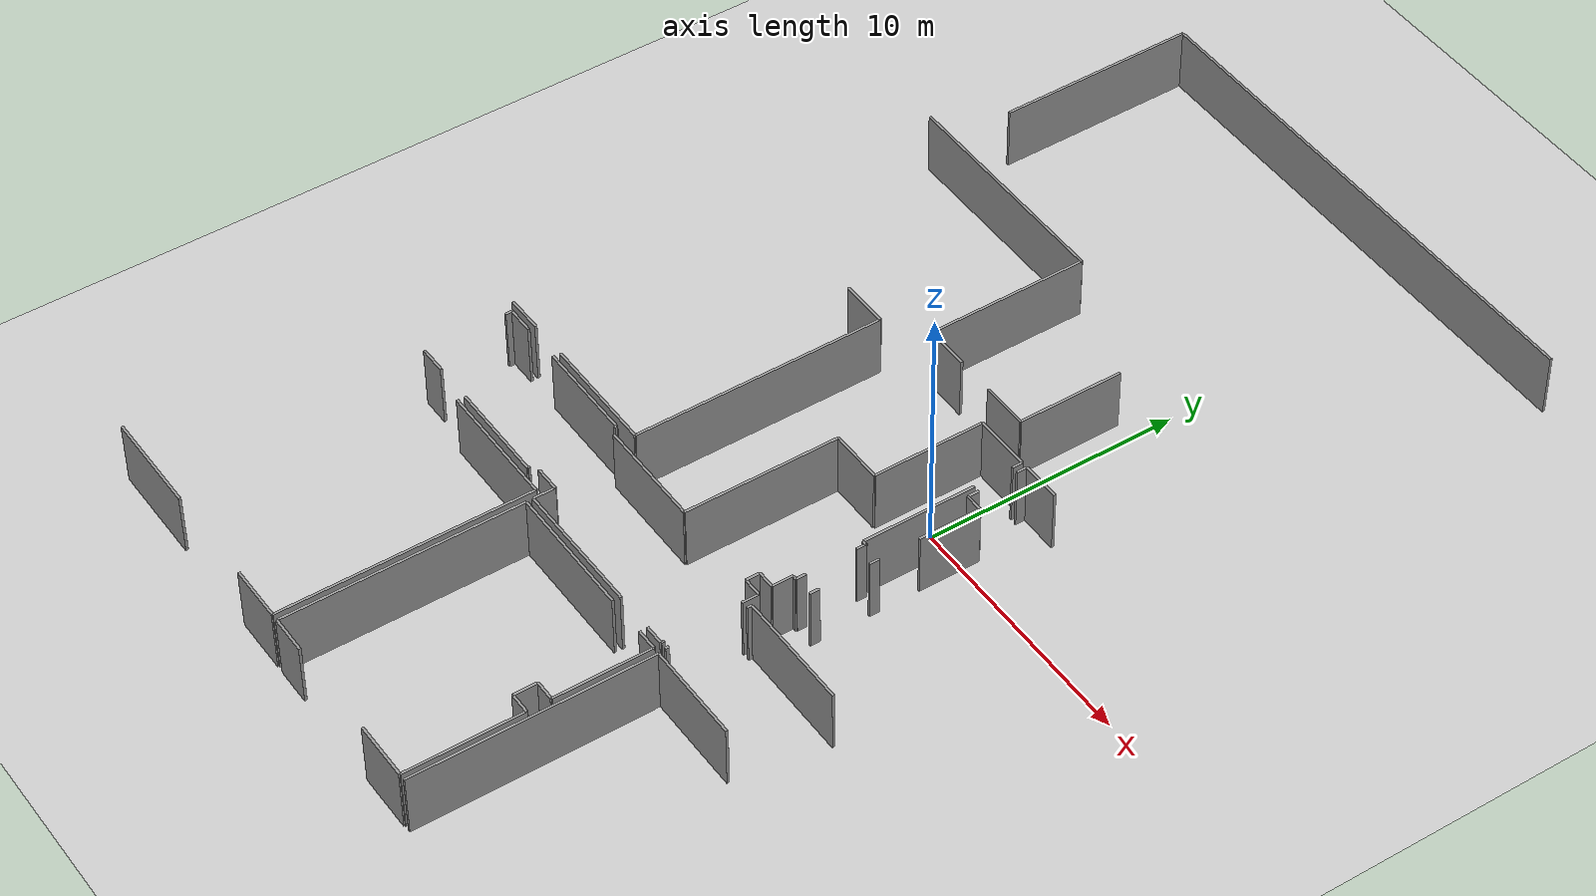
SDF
<sdf version="1.6">
 <world name="default">
  <model name="ground_plane">
   <static>1</static>
   <link name="link">
    <collision name="collision">
     <geometry><plane><normal>0 0 1</normal><size>100 100</size></plane></geometry>
     <surface><friction><ode><mu>100</mu><mu2>50</mu2></ode></friction></surface>
    </collision>
    <visual name="visual">
     <cast_shadows>0</cast_shadows>
     <geometry><plane><normal>0 0 1</normal><size>100 100</size></plane></geometry>
     <material>
      <script><uri>file://media/materials/scripts/gazebo.material</uri><name>Gazebo/Grey</name></script>
     </material>
    </visual>
   </link>
  </model>
  <model name="50057025">
   <static>1</static>
   <link name="Wall_38">
    <collision name="Wall_38_Collision">
     <geometry><box><size>1.92383444562 0.1 2.5</size></box></geometry>
     <pose>0.961917222808 0 1.25 0 0 0</pose>
    </collision>
    <visual name="Wall_38_Visual">
     <pose>0.961917222808 0 1.25 0 0 0</pose>
     <geometry><box><size>1.92383444562 0.1 2.5</size></box></geometry>
     <material>
      <script><uri>file://media/materials/scripts/gazebo.material</uri><name>Gazebo/Grey</name></script>
      <ambient>1 1 1 1</ambient>
     </material>
    </visual>
    <pose>46.2909601693 -17.7604788751 0 0 0 0.0</pose>
   </link>
   <link name="Wall_39">
    <collision name="Wall_39_Collision">
     <geometry><box><size>9.94367442373 0.1 2.5</size></box></geometry>
     <pose>4.97183721186 0 1.25 0 0 0</pose>
    </collision>
    <visual name="Wall_39_Visual">
     <pose>4.97183721186 0 1.25 0 0 0</pose>
     <geometry><box><size>9.94367442373 0.1 2.5</size></box></geometry>
     <material>
      <script><uri>file://media/materials/scripts/gazebo.material</uri><name>Gazebo/Grey</name></script>
      <ambient>1 1 1 1</ambient>
     </material>
    </visual>
    <pose>48.2147946149 -17.7604788751 0 0 0 -1.57079632679</pose>
   </link>
   <link name="Wall_40">
    <collision name="Wall_40_Collision">
     <geometry><box><size>4.73872000223 0.1 2.5</size></box></geometry>
     <pose>2.36936000111 0 1.25 0 0 0</pose>
    </collision>
    <visual name="Wall_40_Visual">
     <pose>2.36936000111 0 1.25 0 0 0</pose>
     <geometry><box><size>4.73872000223 0.1 2.5</size></box></geometry>
     <material>
      <script><uri>file://media/materials/scripts/gazebo.material</uri><name>Gazebo/Grey</name></script>
      <ambient>1 1 1 1</ambient>
     </material>
    </visual>
    <pose>48.2147946149 -27.7041532988 0 0 0 3.14159265359</pose>
   </link>
   <link name="Wall_41">
    <collision name="Wall_41_Collision">
     <geometry><box><size>1.47314738923 0.1 2.5</size></box></geometry>
     <pose>0.736573694616 0 1.25 0 0 0</pose>
    </collision>
    <visual name="Wall_41_Visual">
     <pose>0.736573694616 0 1.25 0 0 0</pose>
     <geometry><box><size>1.47314738923 0.1 2.5</size></box></geometry>
     <material>
      <script><uri>file://media/materials/scripts/gazebo.material</uri><name>Gazebo/Grey</name></script>
      <ambient>1 1 1 1</ambient>
     </material>
    </visual>
    <pose>41.8593899815 -27.7041532988 0 0 0 -3.13024318392</pose>
   </link>
   <link name="Wall_52">
    <collision name="Wall_52_Collision">
     <geometry><box><size>0.274851586476 0.1 2.5</size></box></geometry>
     <pose>0.137425793238 0 1.25 0 0 0</pose>
    </collision>
    <visual name="Wall_52_Visual">
     <pose>0.137425793238 0 1.25 0 0 0</pose>
     <geometry><box><size>0.274851586476 0.1 2.5</size></box></geometry>
     <material>
      <script><uri>file://media/materials/scripts/gazebo.material</uri><name>Gazebo/Grey</name></script>
      <ambient>1 1 1 1</ambient>
     </material>
    </visual>
    <pose>40.761123573 -28.2622160131 0 0 0 1.57079632679</pose>
   </link>
   <link name="Wall_53">
    <collision name="Wall_53_Collision">
     <geometry><box><size>1.09927968619 0.1 2.5</size></box></geometry>
     <pose>0.549639843094 0 1.25 0 0 0</pose>
    </collision>
    <visual name="Wall_53_Visual">
     <pose>0.549639843094 0 1.25 0 0 0</pose>
     <geometry><box><size>1.09927968619 0.1 2.5</size></box></geometry>
     <material>
      <script><uri>file://media/materials/scripts/gazebo.material</uri><name>Gazebo/Grey</name></script>
      <ambient>1 1 1 1</ambient>
     </material>
    </visual>
    <pose>40.761123573 -27.9873644266 0 0 0 0.0</pose>
   </link>
   <link name="Wall_54">
    <collision name="Wall_54_Collision">
     <geometry><box><size>4.06793013957 0.1 2.5</size></box></geometry>
     <pose>2.03396506978 0 1.25 0 0 0</pose>
    </collision>
    <visual name="Wall_54_Visual">
     <pose>2.03396506978 0 1.25 0 0 0</pose>
     <geometry><box><size>4.06793013957 0.1 2.5</size></box></geometry>
     <material>
      <script><uri>file://media/materials/scripts/gazebo.material</uri><name>Gazebo/Grey</name></script>
      <ambient>1 1 1 1</ambient>
     </material>
    </visual>
    <pose>43.433390288 -27.9873644266 0 0 0 0.0</pose>
   </link>
   <link name="Wall_55">
    <collision name="Wall_55_Collision">
     <geometry><box><size>0.08954842011 0.1 2.5</size></box></geometry>
     <pose>0.044774210055 0 1.25 0 0 0</pose>
    </collision>
    <visual name="Wall_55_Visual">
     <pose>0.044774210055 0 1.25 0 0 0</pose>
     <geometry><box><size>0.08954842011 0.1 2.5</size></box></geometry>
     <material>
      <script><uri>file://media/materials/scripts/gazebo.material</uri><name>Gazebo/Grey</name></script>
      <ambient>1 1 1 1</ambient>
     </material>
    </visual>
    <pose>47.5013204276 -27.9873644266 0 0 0 -1.57079632679</pose>
   </link>
   <link name="Wall_56">
    <collision name="Wall_56_Collision">
     <geometry><box><size>0.0818221773565 0.1 2.5</size></box></geometry>
     <pose>0.0409110886783 0 1.25 0 0 0</pose>
    </collision>
    <visual name="Wall_56_Visual">
     <pose>0.0409110886783 0 1.25 0 0 0</pose>
     <geometry><box><size>0.0818221773565 0.1 2.5</size></box></geometry>
     <material>
      <script><uri>file://media/materials/scripts/gazebo.material</uri><name>Gazebo/Grey</name></script>
      <ambient>1 1 1 1</ambient>
     </material>
    </visual>
    <pose>47.5013204276 -31.3829847869 0 0 0 -1.57079632679</pose>
   </link>
   <link name="Wall_57">
    <collision name="Wall_57_Collision">
     <geometry><box><size>4.05539082756 0.1 2.5</size></box></geometry>
     <pose>2.02769541378 0 1.25 0 0 0</pose>
    </collision>
    <visual name="Wall_57_Visual">
     <pose>2.02769541378 0 1.25 0 0 0</pose>
     <geometry><box><size>4.05539082756 0.1 2.5</size></box></geometry>
     <material>
      <script><uri>file://media/materials/scripts/gazebo.material</uri><name>Gazebo/Grey</name></script>
      <ambient>1 1 1 1</ambient>
     </material>
    </visual>
    <pose>47.5013204276 -31.4648069643 0 0 0 3.14159265359</pose>
   </link>
   <link name="Wall_58">
    <collision name="Wall_58_Collision">
     <geometry><box><size>1.13005799748 0.1 2.5</size></box></geometry>
     <pose>0.565028998742 0 1.25 0 0 0</pose>
    </collision>
    <visual name="Wall_58_Visual">
     <pose>0.565028998742 0 1.25 0 0 0</pose>
     <geometry><box><size>1.13005799748 0.1 2.5</size></box></geometry>
     <material>
      <script><uri>file://media/materials/scripts/gazebo.material</uri><name>Gazebo/Grey</name></script>
      <ambient>1 1 1 1</ambient>
     </material>
    </visual>
    <pose>41.8762357239 -31.4648069643 0 0 0 3.14159265359</pose>
   </link>
   <link name="Wall_67">
    <collision name="Wall_67_Collision">
     <geometry><box><size>5.07892800282 0.1 2.5</size></box></geometry>
     <pose>2.53946400141 0 1.25 0 0 0</pose>
    </collision>
    <visual name="Wall_67_Visual">
     <pose>2.53946400141 0 1.25 0 0 0</pose>
     <geometry><box><size>5.07892800282 0.1 2.5</size></box></geometry>
     <material>
      <script><uri>file://media/materials/scripts/gazebo.material</uri><name>Gazebo/Grey</name></script>
      <ambient>1 1 1 1</ambient>
     </material>
    </visual>
    <pose>43.4427631071 -31.7691702649 0 0 0 0.0</pose>
   </link>
   <link name="Wall_68">
    <collision name="Wall_68_Collision">
     <geometry><box><size>9.93252836861 0.1 2.5</size></box></geometry>
     <pose>4.96626418431 0 1.25 0 0 0</pose>
    </collision>
    <visual name="Wall_68_Visual">
     <pose>4.96626418431 0 1.25 0 0 0</pose>
     <geometry><box><size>9.93252836861 0.1 2.5</size></box></geometry>
     <material>
      <script><uri>file://media/materials/scripts/gazebo.material</uri><name>Gazebo/Grey</name></script>
      <ambient>1 1 1 1</ambient>
     </material>
    </visual>
    <pose>48.5216911099 -31.7691702649 0 0 0 -1.57079632679</pose>
   </link>
   <link name="Wall_69">
    <collision name="Wall_69_Collision">
     <geometry><box><size>2.24137035681 0.1 2.5</size></box></geometry>
     <pose>1.12068517841 0 1.25 0 0 0</pose>
    </collision>
    <visual name="Wall_69_Visual">
     <pose>1.12068517841 0 1.25 0 0 0</pose>
     <geometry><box><size>2.24137035681 0.1 2.5</size></box></geometry>
     <material>
      <script><uri>file://media/materials/scripts/gazebo.material</uri><name>Gazebo/Grey</name></script>
      <ambient>1 1 1 1</ambient>
     </material>
    </visual>
    <pose>48.5216911099 -41.7016986335 0 0 0 3.14159265359</pose>
   </link>
   <link name="Wall_70">
    <collision name="Wall_70_Collision">
     <geometry><box><size>4.04209155724 0.1 2.5</size></box></geometry>
     <pose>2.02104577862 0 1.25 0 0 0</pose>
    </collision>
    <visual name="Wall_70_Visual">
     <pose>2.02104577862 0 1.25 0 0 0</pose>
     <geometry><box><size>4.04209155724 0.1 2.5</size></box></geometry>
     <material>
      <script><uri>file://media/materials/scripts/gazebo.material</uri><name>Gazebo/Grey</name></script>
      <ambient>1 1 1 1</ambient>
     </material>
    </visual>
    <pose>42.2602679866 -41.7016986335 0 0 0 3.14159265359</pose>
   </link>
   <link name="Wall_72">
    <collision name="Wall_72_Collision">
     <geometry><box><size>9.38041866103 0.1 2.5</size></box></geometry>
     <pose>4.69020933051 0 1.25 0 0 0</pose>
    </collision>
    <visual name="Wall_72_Visual">
     <pose>4.69020933051 0 1.25 0 0 0</pose>
     <geometry><box><size>9.38041866103 0.1 2.5</size></box></geometry>
     <material>
      <script><uri>file://media/materials/scripts/gazebo.material</uri><name>Gazebo/Grey</name></script>
      <ambient>1 1 1 1</ambient>
     </material>
    </visual>
    <pose>48.8117418624 -41.7020786126 0 0 0 1.57079632679</pose>
   </link>
   <link name="Wall_73">
    <collision name="Wall_73_Collision">
     <geometry><box><size>5.36023923487 0.1 2.5</size></box></geometry>
     <pose>2.68011961744 0 1.25 0 0 0</pose>
    </collision>
    <visual name="Wall_73_Visual">
     <pose>2.68011961744 0 1.25 0 0 0</pose>
     <geometry><box><size>5.36023923487 0.1 2.5</size></box></geometry>
     <material>
      <script><uri>file://media/materials/scripts/gazebo.material</uri><name>Gazebo/Grey</name></script>
      <ambient>1 1 1 1</ambient>
     </material>
    </visual>
    <pose>48.8117418624 -32.3216599516 0 0 0 0.0</pose>
   </link>
   <link name="Wall_74">
    <collision name="Wall_74_Collision">
     <geometry><box><size>0.851913258359 0.1 2.5</size></box></geometry>
     <pose>0.42595662918 0 1.25 0 0 0</pose>
    </collision>
    <visual name="Wall_74_Visual">
     <pose>0.42595662918 0 1.25 0 0 0</pose>
     <geometry><box><size>0.851913258359 0.1 2.5</size></box></geometry>
     <material>
      <script><uri>file://media/materials/scripts/gazebo.material</uri><name>Gazebo/Grey</name></script>
      <ambient>1 1 1 1</ambient>
     </material>
    </visual>
    <pose>55.7814461247 -32.3216599516 0 0 0 0.0</pose>
   </link>
   <link name="Wall_75">
    <collision name="Wall_75_Collision">
     <geometry><box><size>3.84348912056 0.1 2.5</size></box></geometry>
     <pose>1.92174456028 0 1.25 0 0 0</pose>
    </collision>
    <visual name="Wall_75_Visual">
     <pose>1.92174456028 0 1.25 0 0 0</pose>
     <geometry><box><size>3.84348912056 0.1 2.5</size></box></geometry>
     <material>
      <script><uri>file://media/materials/scripts/gazebo.material</uri><name>Gazebo/Grey</name></script>
      <ambient>1 1 1 1</ambient>
     </material>
    </visual>
    <pose>56.633359383 -32.3216599516 0 0 0 -1.57079632679</pose>
   </link>
   <link name="Wall_76">
    <collision name="Wall_76_Collision">
     <geometry><box><size>0.812522086288 0.1 2.5</size></box></geometry>
     <pose>0.406261043144 0 1.25 0 0 0</pose>
    </collision>
    <visual name="Wall_76_Visual">
     <pose>0.406261043144 0 1.25 0 0 0</pose>
     <geometry><box><size>0.812522086288 0.1 2.5</size></box></geometry>
     <material>
      <script><uri>file://media/materials/scripts/gazebo.material</uri><name>Gazebo/Grey</name></script>
      <ambient>1 1 1 1</ambient>
     </material>
    </visual>
    <pose>56.633359383 -36.1651490722 0 0 0 3.14159265359</pose>
   </link>
   <link name="Wall_77">
    <collision name="Wall_77_Collision">
     <geometry><box><size>0.928922366459 0.1 2.5</size></box></geometry>
     <pose>0.46446118323 0 1.25 0 0 0</pose>
    </collision>
    <visual name="Wall_77_Visual">
     <pose>0.46446118323 0 1.25 0 0 0</pose>
     <geometry><box><size>0.928922366459 0.1 2.5</size></box></geometry>
     <material>
      <script><uri>file://media/materials/scripts/gazebo.material</uri><name>Gazebo/Grey</name></script>
      <ambient>1 1 1 1</ambient>
     </material>
    </visual>
    <pose>55.8208372967 -36.1651490722 0 0 0 -1.57079632679</pose>
   </link>
   <link name="Wall_78">
    <collision name="Wall_78_Collision">
     <geometry><box><size>0.833167620203 0.1 2.5</size></box></geometry>
     <pose>0.416583810102 0 1.25 0 0 0</pose>
    </collision>
    <visual name="Wall_78_Visual">
     <pose>0.416583810102 0 1.25 0 0 0</pose>
     <geometry><box><size>0.833167620203 0.1 2.5</size></box></geometry>
     <material>
      <script><uri>file://media/materials/scripts/gazebo.material</uri><name>Gazebo/Grey</name></script>
      <ambient>1 1 1 1</ambient>
     </material>
    </visual>
    <pose>55.8208372967 -37.0940714386 0 0 0 0.0</pose>
   </link>
   <link name="Wall_79">
    <collision name="Wall_79_Collision">
     <geometry><box><size>4.61801329167 0.1 2.5</size></box></geometry>
     <pose>2.30900664584 0 1.25 0 0 0</pose>
    </collision>
    <visual name="Wall_79_Visual">
     <pose>2.30900664584 0 1.25 0 0 0</pose>
     <geometry><box><size>4.61801329167 0.1 2.5</size></box></geometry>
     <material>
      <script><uri>file://media/materials/scripts/gazebo.material</uri><name>Gazebo/Grey</name></script>
      <ambient>1 1 1 1</ambient>
     </material>
    </visual>
    <pose>56.6540049169 -37.0940714386 0 0 0 -1.57079632679</pose>
   </link>
   <link name="Wall_80">
    <collision name="Wall_80_Collision">
     <geometry><box><size>2.32648568682 0.1 2.5</size></box></geometry>
     <pose>1.16324284341 0 1.25 0 0 0</pose>
    </collision>
    <visual name="Wall_80_Visual">
     <pose>1.16324284341 0 1.25 0 0 0</pose>
     <geometry><box><size>2.32648568682 0.1 2.5</size></box></geometry>
     <material>
      <script><uri>file://media/materials/scripts/gazebo.material</uri><name>Gazebo/Grey</name></script>
      <ambient>1 1 1 1</ambient>
     </material>
    </visual>
    <pose>56.6540049169 -41.7120847303 0 0 0 3.14159265359</pose>
   </link>
   <link name="Wall_81">
    <collision name="Wall_81_Collision">
     <geometry><box><size>1.51007030123 0.1 2.5</size></box></geometry>
     <pose>0.755035150613 0 1.25 0 0 0</pose>
    </collision>
    <visual name="Wall_81_Visual">
     <pose>0.755035150613 0 1.25 0 0 0</pose>
     <geometry><box><size>1.51007030123 0.1 2.5</size></box></geometry>
     <material>
      <script><uri>file://media/materials/scripts/gazebo.material</uri><name>Gazebo/Grey</name></script>
      <ambient>1 1 1 1</ambient>
     </material>
    </visual>
    <pose>50.3217790117 -41.7120847303 0 0 0 3.13496634561</pose>
   </link>
   <link name="Wall_82">
    <collision name="Wall_82_Collision">
     <geometry><box><size>9.40030423664 0.1 2.5</size></box></geometry>
     <pose>4.70015211832 0 1.25 0 0 0</pose>
    </collision>
    <visual name="Wall_82_Visual">
     <pose>4.70015211832 0 1.25 0 0 0</pose>
     <geometry><box><size>9.40030423664 0.1 2.5</size></box></geometry>
     <material>
      <script><uri>file://media/materials/scripts/gazebo.material</uri><name>Gazebo/Grey</name></script>
      <ambient>1 1 1 1</ambient>
     </material>
    </visual>
    <pose>56.9192303649 -41.7248773617 0 0 0 1.57079632679</pose>
   </link>
   <link name="Wall_83">
    <collision name="Wall_83_Collision">
     <geometry><box><size>3.97749510144 0.1 2.5</size></box></geometry>
     <pose>1.98874755072 0 1.25 0 0 0</pose>
    </collision>
    <visual name="Wall_83_Visual">
     <pose>1.98874755072 0 1.25 0 0 0</pose>
     <geometry><box><size>3.97749510144 0.1 2.5</size></box></geometry>
     <material>
      <script><uri>file://media/materials/scripts/gazebo.material</uri><name>Gazebo/Grey</name></script>
      <ambient>1 1 1 1</ambient>
     </material>
    </visual>
    <pose>56.9192303649 -32.3245731251 0 0 0 0.0</pose>
   </link>
   <link name="Wall_217">
    <collision name="Wall_217_Collision">
     <geometry><box><size>0.143758779102 0.1 2.5</size></box></geometry>
     <pose>0.0718793895508 0 1.25 0 0 0</pose>
    </collision>
    <visual name="Wall_217_Visual">
     <pose>0.0718793895508 0 1.25 0 0 0</pose>
     <geometry><box><size>0.143758779102 0.1 2.5</size></box></geometry>
     <material>
      <script><uri>file://media/materials/scripts/gazebo.material</uri><name>Gazebo/Grey</name></script>
      <ambient>1 1 1 1</ambient>
     </material>
    </visual>
    <pose>56.855140548 -32.0469350248 0 0 0 1.57079632679</pose>
   </link>
   <link name="Wall_218">
    <collision name="Wall_218_Collision">
     <geometry><box><size>0.198222457528 0.1 2.5</size></box></geometry>
     <pose>0.0991112287639 0 1.25 0 0 0</pose>
    </collision>
    <visual name="Wall_218_Visual">
     <pose>0.0991112287639 0 1.25 0 0 0</pose>
     <geometry><box><size>0.198222457528 0.1 2.5</size></box></geometry>
     <material>
      <script><uri>file://media/materials/scripts/gazebo.material</uri><name>Gazebo/Grey</name></script>
      <ambient>1 1 1 1</ambient>
     </material>
    </visual>
    <pose>56.855140548 -28.9146402167 0 0 0 1.57079632679</pose>
   </link>
   <link name="Wall_219">
    <collision name="Wall_219_Collision">
     <geometry><box><size>4.69046264995 0.1 2.5</size></box></geometry>
     <pose>2.34523132497 0 1.25 0 0 0</pose>
    </collision>
    <visual name="Wall_219_Visual">
     <pose>2.34523132497 0 1.25 0 0 0</pose>
     <geometry><box><size>4.69046264995 0.1 2.5</size></box></geometry>
     <material>
      <script><uri>file://media/materials/scripts/gazebo.material</uri><name>Gazebo/Grey</name></script>
      <ambient>1 1 1 1</ambient>
     </material>
    </visual>
    <pose>56.855140548 -28.7164177592 0 0 0 0.0</pose>
   </link>
   <link name="Wall_267">
    <collision name="Wall_267_Collision">
     <geometry><box><size>2.4246469677 0.1 2.5</size></box></geometry>
     <pose>1.21232348385 0 1.25 0 0 0</pose>
    </collision>
    <visual name="Wall_267_Visual">
     <pose>1.21232348385 0 1.25 0 0 0</pose>
     <geometry><box><size>2.4246469677 0.1 2.5</size></box></geometry>
     <material>
      <script><uri>file://media/materials/scripts/gazebo.material</uri><name>Gazebo/Grey</name></script>
      <ambient>1 1 1 1</ambient>
     </material>
    </visual>
    <pose>57.4638671492 -22.5612621388 0 0 0 1.57079632679</pose>
   </link>
   <link name="Wall_268">
    <collision name="Wall_268_Collision">
     <geometry><box><size>0.676236230505 0.1 2.5</size></box></geometry>
     <pose>0.338118115253 0 1.25 0 0 0</pose>
    </collision>
    <visual name="Wall_268_Visual">
     <pose>0.338118115253 0 1.25 0 0 0</pose>
     <geometry><box><size>0.676236230505 0.1 2.5</size></box></geometry>
     <material>
      <script><uri>file://media/materials/scripts/gazebo.material</uri><name>Gazebo/Grey</name></script>
      <ambient>1 1 1 1</ambient>
     </material>
    </visual>
    <pose>57.4638671492 -20.136615171 0 0 0 3.14159265359</pose>
   </link>
   <link name="Wall_269">
    <collision name="Wall_269_Collision">
     <geometry><box><size>0.440649156383 0.1 2.5</size></box></geometry>
     <pose>0.220324578191 0 1.25 0 0 0</pose>
    </collision>
    <visual name="Wall_269_Visual">
     <pose>0.220324578191 0 1.25 0 0 0</pose>
     <geometry><box><size>0.440649156383 0.1 2.5</size></box></geometry>
     <material>
      <script><uri>file://media/materials/scripts/gazebo.material</uri><name>Gazebo/Grey</name></script>
      <ambient>1 1 1 1</ambient>
     </material>
    </visual>
    <pose>56.7876309187 -20.136615171 0 0 0 1.57079632679</pose>
   </link>
   <link name="Wall_270">
    <collision name="Wall_270_Collision">
     <geometry><box><size>0.421396879358 0.1 2.5</size></box></geometry>
     <pose>0.210698439679 0 1.25 0 0 0</pose>
    </collision>
    <visual name="Wall_270_Visual">
     <pose>0.210698439679 0 1.25 0 0 0</pose>
     <geometry><box><size>0.421396879358 0.1 2.5</size></box></geometry>
     <material>
      <script><uri>file://media/materials/scripts/gazebo.material</uri><name>Gazebo/Grey</name></script>
      <ambient>1 1 1 1</ambient>
     </material>
    </visual>
    <pose>56.7876309187 -18.1598369636 0 0 0 1.57079632679</pose>
   </link>
   <link name="Wall_271">
    <collision name="Wall_271_Collision">
     <geometry><box><size>1.57108713302 0.1 2.5</size></box></geometry>
     <pose>0.78554356651 0 1.25 0 0 0</pose>
    </collision>
    <visual name="Wall_271_Visual">
     <pose>0.78554356651 0 1.25 0 0 0</pose>
     <geometry><box><size>1.57108713302 0.1 2.5</size></box></geometry>
     <material>
      <script><uri>file://media/materials/scripts/gazebo.material</uri><name>Gazebo/Grey</name></script>
      <ambient>1 1 1 1</ambient>
     </material>
    </visual>
    <pose>56.7876309187 -17.7384400843 0 0 0 0.0</pose>
   </link>
   <link name="Wall_275">
    <collision name="Wall_275_Collision">
     <geometry><box><size>0.376812658879 0.1 2.5</size></box></geometry>
     <pose>0.188406329439 0 1.25 0 0 0</pose>
    </collision>
    <visual name="Wall_275_Visual">
     <pose>0.188406329439 0 1.25 0 0 0</pose>
     <geometry><box><size>0.376812658879 0.1 2.5</size></box></geometry>
     <material>
      <script><uri>file://media/materials/scripts/gazebo.material</uri><name>Gazebo/Grey</name></script>
      <ambient>1 1 1 1</ambient>
     </material>
    </visual>
    <pose>57.4752665237 -26.893657768 0 0 0 1.57079632679</pose>
   </link>
   <link name="Wall_276">
    <collision name="Wall_276_Collision">
     <geometry><box><size>0.39112520693 0.1 2.5</size></box></geometry>
     <pose>0.195562603465 0 1.25 0 0 0</pose>
    </collision>
    <visual name="Wall_276_Visual">
     <pose>0.195562603465 0 1.25 0 0 0</pose>
     <geometry><box><size>0.39112520693 0.1 2.5</size></box></geometry>
     <material>
      <script><uri>file://media/materials/scripts/gazebo.material</uri><name>Gazebo/Grey</name></script>
      <ambient>1 1 1 1</ambient>
     </material>
    </visual>
    <pose>57.4752665237 -24.5580525815 0 0 0 1.57079632679</pose>
   </link>
   <link name="Wall_280">
    <collision name="Wall_280_Collision">
     <geometry><box><size>0.852419897228 0.1 2.5</size></box></geometry>
     <pose>0.426209948614 0 1.25 0 0 0</pose>
    </collision>
    <visual name="Wall_280_Visual">
     <pose>0.426209948614 0 1.25 0 0 0</pose>
     <geometry><box><size>0.852419897228 0.1 2.5</size></box></geometry>
     <material>
      <script><uri>file://media/materials/scripts/gazebo.material</uri><name>Gazebo/Grey</name></script>
      <ambient>1 1 1 1</ambient>
     </material>
    </visual>
    <pose>48.8005958073 -32.0564345036 0 0 0 1.57079632679</pose>
   </link>
   <link name="Wall_281">
    <collision name="Wall_281_Collision">
     <geometry><box><size>1.00555149541 0.1 2.5</size></box></geometry>
     <pose>0.502775747704 0 1.25 0 0 0</pose>
    </collision>
    <visual name="Wall_281_Visual">
     <pose>0.502775747704 0 1.25 0 0 0</pose>
     <geometry><box><size>1.00555149541 0.1 2.5</size></box></geometry>
     <material>
      <script><uri>file://media/materials/scripts/gazebo.material</uri><name>Gazebo/Grey</name></script>
      <ambient>1 1 1 1</ambient>
     </material>
    </visual>
    <pose>48.8005958073 -31.2040146064 0 0 0 3.14159265359</pose>
   </link>
   <link name="Wall_282">
    <collision name="Wall_282_Collision">
     <geometry><box><size>4.33581544159 0.1 2.5</size></box></geometry>
     <pose>2.1679077208 0 1.25 0 0 0</pose>
    </collision>
    <visual name="Wall_282_Visual">
     <pose>2.1679077208 0 1.25 0 0 0</pose>
     <geometry><box><size>4.33581544159 0.1 2.5</size></box></geometry>
     <material>
      <script><uri>file://media/materials/scripts/gazebo.material</uri><name>Gazebo/Grey</name></script>
      <ambient>1 1 1 1</ambient>
     </material>
    </visual>
    <pose>47.7950443119 -28.2704488947 0 0 0 0.0</pose>
   </link>
   <link name="Wall_283">
    <collision name="Wall_283_Collision">
     <geometry><box><size>6.12716382294 0.1 2.5</size></box></geometry>
     <pose>3.06358191147 0 1.25 0 0 0</pose>
    </collision>
    <visual name="Wall_283_Visual">
     <pose>3.06358191147 0 1.25 0 0 0</pose>
     <geometry><box><size>6.12716382294 0.1 2.5</size></box></geometry>
     <material>
      <script><uri>file://media/materials/scripts/gazebo.material</uri><name>Gazebo/Grey</name></script>
      <ambient>1 1 1 1</ambient>
     </material>
    </visual>
    <pose>52.1308597535 -28.2704488947 0 0 0 1.57079632679</pose>
   </link>
   <link name="Wall_284">
    <collision name="Wall_284_Collision">
     <geometry><box><size>2.12851654873 0.1 2.5</size></box></geometry>
     <pose>1.06425827436 0 1.25 0 0 0</pose>
    </collision>
    <visual name="Wall_284_Visual">
     <pose>1.06425827436 0 1.25 0 0 0</pose>
     <geometry><box><size>2.12851654873 0.1 2.5</size></box></geometry>
     <material>
      <script><uri>file://media/materials/scripts/gazebo.material</uri><name>Gazebo/Grey</name></script>
      <ambient>1 1 1 1</ambient>
     </material>
    </visual>
    <pose>52.1308597535 -22.1432850718 0 0 0 0.0</pose>
   </link>
   <link name="Wall_285">
    <collision name="Wall_285_Collision">
     <geometry><box><size>4.39509218928 0.1 2.5</size></box></geometry>
     <pose>2.19754609464 0 1.25 0 0 0</pose>
    </collision>
    <visual name="Wall_285_Visual">
     <pose>2.19754609464 0 1.25 0 0 0</pose>
     <geometry><box><size>4.39509218928 0.1 2.5</size></box></geometry>
     <material>
      <script><uri>file://media/materials/scripts/gazebo.material</uri><name>Gazebo/Grey</name></script>
      <ambient>1 1 1 1</ambient>
     </material>
    </visual>
    <pose>54.2593763022 -22.1432850718 0 0 0 1.57079632679</pose>
   </link>
   <link name="Wall_286">
    <collision name="Wall_286_Collision">
     <geometry><box><size>2.26720893914 0.1 2.5</size></box></geometry>
     <pose>1.13360446957 0 1.25 0 0 0</pose>
    </collision>
    <visual name="Wall_286_Visual">
     <pose>1.13360446957 0 1.25 0 0 0</pose>
     <geometry><box><size>2.26720893914 0.1 2.5</size></box></geometry>
     <material>
      <script><uri>file://media/materials/scripts/gazebo.material</uri><name>Gazebo/Grey</name></script>
      <ambient>1 1 1 1</ambient>
     </material>
    </visual>
    <pose>54.2593763022 -17.7481928825 0 0 0 0.0</pose>
   </link>
   <link name="Wall_287">
    <collision name="Wall_287_Collision">
     <geometry><box><size>0.405311095265 0.1 2.5</size></box></geometry>
     <pose>0.202655547632 0 1.25 0 0 0</pose>
    </collision>
    <visual name="Wall_287_Visual">
     <pose>0.202655547632 0 1.25 0 0 0</pose>
     <geometry><box><size>0.405311095265 0.1 2.5</size></box></geometry>
     <material>
      <script><uri>file://media/materials/scripts/gazebo.material</uri><name>Gazebo/Grey</name></script>
      <ambient>1 1 1 1</ambient>
     </material>
    </visual>
    <pose>56.5265852414 -17.7481928825 0 0 0 -1.57079632679</pose>
   </link>
   <link name="Wall_288">
    <collision name="Wall_288_Collision">
     <geometry><box><size>4.46374175604 0.1 2.5</size></box></geometry>
     <pose>2.23187087802 0 1.25 0 0 0</pose>
    </collision>
    <visual name="Wall_288_Visual">
     <pose>2.23187087802 0 1.25 0 0 0</pose>
     <geometry><box><size>4.46374175604 0.1 2.5</size></box></geometry>
     <material>
      <script><uri>file://media/materials/scripts/gazebo.material</uri><name>Gazebo/Grey</name></script>
      <ambient>1 1 1 1</ambient>
     </material>
    </visual>
    <pose>56.5265852414 -19.6843133207 0 0 0 -1.57079632679</pose>
   </link>
   <link name="Wall_289">
    <collision name="Wall_289_Collision">
     <geometry><box><size>0.157818007719 0.1 2.5</size></box></geometry>
     <pose>0.0789090038593 0 1.25 0 0 0</pose>
    </collision>
    <visual name="Wall_289_Visual">
     <pose>0.0789090038593 0 1.25 0 0 0</pose>
     <geometry><box><size>0.157818007719 0.1 2.5</size></box></geometry>
     <material>
      <script><uri>file://media/materials/scripts/gazebo.material</uri><name>Gazebo/Grey</name></script>
      <ambient>1 1 1 1</ambient>
     </material>
    </visual>
    <pose>56.5265852414 -24.1480550767 0 0 0 0.0</pose>
   </link>
   <link name="Wall_290">
    <collision name="Wall_290_Collision">
     <geometry><box><size>0.383145644742 0.1 2.5</size></box></geometry>
     <pose>0.191572822371 0 1.25 0 0 0</pose>
    </collision>
    <visual name="Wall_290_Visual">
     <pose>0.191572822371 0 1.25 0 0 0</pose>
     <geometry><box><size>0.383145644742 0.1 2.5</size></box></geometry>
     <material>
      <script><uri>file://media/materials/scripts/gazebo.material</uri><name>Gazebo/Grey</name></script>
      <ambient>1 1 1 1</ambient>
     </material>
    </visual>
    <pose>56.6844032491 -24.1480550767 0 0 0 -1.57079632679</pose>
   </link>
   <link name="Wall_291">
    <collision name="Wall_291_Collision">
     <geometry><box><size>0.385045540501 0.1 2.5</size></box></geometry>
     <pose>0.192522770251 0 1.25 0 0 0</pose>
    </collision>
    <visual name="Wall_291_Visual">
     <pose>0.192522770251 0 1.25 0 0 0</pose>
     <geometry><box><size>0.385045540501 0.1 2.5</size></box></geometry>
     <material>
      <script><uri>file://media/materials/scripts/gazebo.material</uri><name>Gazebo/Grey</name></script>
      <ambient>1 1 1 1</ambient>
     </material>
    </visual>
    <pose>56.6844032491 -26.5086122275 0 0 0 -1.57079632679</pose>
   </link>
   <link name="Wall_292">
    <collision name="Wall_292_Collision">
     <geometry><box><size>0.165544250472 0.1 2.5</size></box></geometry>
     <pose>0.0827721252361 0 1.25 0 0 0</pose>
    </collision>
    <visual name="Wall_292_Visual">
     <pose>0.0827721252361 0 1.25 0 0 0</pose>
     <geometry><box><size>0.165544250472 0.1 2.5</size></box></geometry>
     <material>
      <script><uri>file://media/materials/scripts/gazebo.material</uri><name>Gazebo/Grey</name></script>
      <ambient>1 1 1 1</ambient>
     </material>
    </visual>
    <pose>56.6844032491 -26.893657768 0 0 0 3.14159265359</pose>
   </link>
   <link name="Wall_293">
    <collision name="Wall_293_Collision">
     <geometry><box><size>0.827214613492 0.1 2.5</size></box></geometry>
     <pose>0.413607306746 0 1.25 0 0 0</pose>
    </collision>
    <visual name="Wall_293_Visual">
     <pose>0.413607306746 0 1.25 0 0 0</pose>
     <geometry><box><size>0.827214613492 0.1 2.5</size></box></geometry>
     <material>
      <script><uri>file://media/materials/scripts/gazebo.material</uri><name>Gazebo/Grey</name></script>
      <ambient>1 1 1 1</ambient>
     </material>
    </visual>
    <pose>56.5188589986 -26.893657768 0 0 0 -1.57079632679</pose>
   </link>
   <link name="Wall_294">
    <collision name="Wall_294_Collision">
     <geometry><box><size>0.700554896221 0.1 2.5</size></box></geometry>
     <pose>0.350277448111 0 1.25 0 0 0</pose>
    </collision>
    <visual name="Wall_294_Visual">
     <pose>0.350277448111 0 1.25 0 0 0</pose>
     <geometry><box><size>0.700554896221 0.1 2.5</size></box></geometry>
     <material>
      <script><uri>file://media/materials/scripts/gazebo.material</uri><name>Gazebo/Grey</name></script>
      <ambient>1 1 1 1</ambient>
     </material>
    </visual>
    <pose>56.5188589986 -27.7208723815 0 0 0 3.14159265359</pose>
   </link>
   <link name="Wall_295">
    <collision name="Wall_295_Collision">
     <geometry><box><size>0.545776721717 0.1 2.5</size></box></geometry>
     <pose>0.272888360859 0 1.25 0 0 0</pose>
    </collision>
    <visual name="Wall_295_Visual">
     <pose>0.272888360859 0 1.25 0 0 0</pose>
     <geometry><box><size>0.545776721717 0.1 2.5</size></box></geometry>
     <material>
      <script><uri>file://media/materials/scripts/gazebo.material</uri><name>Gazebo/Grey</name></script>
      <ambient>1 1 1 1</ambient>
     </material>
    </visual>
    <pose>55.8183041024 -27.7208723815 0 0 0 -1.57079632679</pose>
   </link>
   <link name="Wall_296">
    <collision name="Wall_296_Collision">
     <geometry><box><size>0.755651873234 0.1 2.5</size></box></geometry>
     <pose>0.377825936617 0 1.25 0 0 0</pose>
    </collision>
    <visual name="Wall_296_Visual">
     <pose>0.377825936617 0 1.25 0 0 0</pose>
     <geometry><box><size>0.755651873234 0.1 2.5</size></box></geometry>
     <material>
      <script><uri>file://media/materials/scripts/gazebo.material</uri><name>Gazebo/Grey</name></script>
      <ambient>1 1 1 1</ambient>
     </material>
    </visual>
    <pose>55.8183041024 -28.2666491032 0 0 0 0.0</pose>
   </link>
   <link name="Wall_297">
    <collision name="Wall_297_Collision">
     <geometry><box><size>0.657110613198 0.1 2.5</size></box></geometry>
     <pose>0.328555306599 0 1.25 0 0 0</pose>
    </collision>
    <visual name="Wall_297_Visual">
     <pose>0.328555306599 0 1.25 0 0 0</pose>
     <geometry><box><size>0.657110613198 0.1 2.5</size></box></geometry>
     <material>
      <script><uri>file://media/materials/scripts/gazebo.material</uri><name>Gazebo/Grey</name></script>
      <ambient>1 1 1 1</ambient>
     </material>
    </visual>
    <pose>56.5739559756 -28.2666491032 0 0 0 -1.57079632679</pose>
   </link>
   <link name="Wall_298">
    <collision name="Wall_298_Collision">
     <geometry><box><size>0.14477205684 0.1 2.5</size></box></geometry>
     <pose>0.0723860284199 0 1.25 0 0 0</pose>
    </collision>
    <visual name="Wall_298_Visual">
     <pose>0.0723860284199 0 1.25 0 0 0</pose>
     <geometry><box><size>0.14477205684 0.1 2.5</size></box></geometry>
     <material>
      <script><uri>file://media/materials/scripts/gazebo.material</uri><name>Gazebo/Grey</name></script>
      <ambient>1 1 1 1</ambient>
     </material>
    </visual>
    <pose>56.5739559756 -31.8741711705 0 0 0 -1.57079632679</pose>
   </link>
   <link name="Wall_299">
    <collision name="Wall_299_Collision">
     <geometry><box><size>0.810622190529 0.1 2.5</size></box></geometry>
     <pose>0.405311095265 0 1.25 0 0 0</pose>
    </collision>
    <visual name="Wall_299_Visual">
     <pose>0.405311095265 0 1.25 0 0 0</pose>
     <geometry><box><size>0.810622190529 0.1 2.5</size></box></geometry>
     <material>
      <script><uri>file://media/materials/scripts/gazebo.material</uri><name>Gazebo/Grey</name></script>
      <ambient>1 1 1 1</ambient>
     </material>
    </visual>
    <pose>56.5739559756 -32.0189432273 0 0 0 3.14159265359</pose>
   </link>
   <link name="Wall_300">
    <collision name="Wall_300_Collision">
     <geometry><box><size>5.39165453582 0.1 2.5</size></box></geometry>
     <pose>2.69582726791 0 1.25 0 0 0</pose>
    </collision>
    <visual name="Wall_300_Visual">
     <pose>2.69582726791 0 1.25 0 0 0</pose>
     <geometry><box><size>5.39165453582 0.1 2.5</size></box></geometry>
     <material>
      <script><uri>file://media/materials/scripts/gazebo.material</uri><name>Gazebo/Grey</name></script>
      <ambient>1 1 1 1</ambient>
     </material>
    </visual>
    <pose>54.1921199923 -32.0189432273 0 0 0 -3.13463902216</pose>
   </link>
   <link name="Wall_303">
    <collision name="Wall_303_Collision">
     <geometry><box><size>7.83643670751 0.1 2.5</size></box></geometry>
     <pose>3.91821835375 0 1.25 0 0 0</pose>
    </collision>
    <visual name="Wall_303_Visual">
     <pose>3.91821835375 0 1.25 0 0 0</pose>
     <geometry><box><size>7.83643670751 0.1 2.5</size></box></geometry>
     <material>
      <script><uri>file://media/materials/scripts/gazebo.material</uri><name>Gazebo/Grey</name></script>
      <ambient>1 1 1 1</ambient>
     </material>
    </visual>
    <pose>41.965784144 -7.83643670751 0 0 0 1.57079632679</pose>
   </link>
   <link name="Wall_304">
    <collision name="Wall_304_Collision">
     <geometry><box><size>20.6835318302 0.1 2.5</size></box></geometry>
     <pose>10.3417659151 0 1.25 0 0 0</pose>
    </collision>
    <visual name="Wall_304_Visual">
     <pose>10.3417659151 0 1.25 0 0 0</pose>
     <geometry><box><size>20.6835318302 0.1 2.5</size></box></geometry>
     <material>
      <script><uri>file://media/materials/scripts/gazebo.material</uri><name>Gazebo/Grey</name></script>
      <ambient>1 1 1 1</ambient>
     </material>
    </visual>
    <pose>41.965784144 -0.0 0 0 0 0.0</pose>
   </link>
   <link name="Wall_313">
    <collision name="Wall_313_Collision">
     <geometry><box><size>4.14531922682 0.1 2.5</size></box></geometry>
     <pose>2.07265961341 0 1.25 0 0 0</pose>
    </collision>
    <visual name="Wall_313_Visual">
     <pose>2.07265961341 0 1.25 0 0 0</pose>
     <geometry><box><size>4.14531922682 0.1 2.5</size></box></geometry>
     <material>
      <script><uri>file://media/materials/scripts/gazebo.material</uri><name>Gazebo/Grey</name></script>
      <ambient>1 1 1 1</ambient>
     </material>
    </visual>
    <pose>54.9321927204 -12.5120801705 0 0 0 -1.57079632679</pose>
   </link>
   <link name="Wall_314">
    <collision name="Wall_314_Collision">
     <geometry><box><size>1.86848414917 0.1 2.5</size></box></geometry>
     <pose>0.934242074585 0 1.25 0 0 0</pose>
    </collision>
    <visual name="Wall_314_Visual">
     <pose>0.934242074585 0 1.25 0 0 0</pose>
     <geometry><box><size>1.86848414917 0.1 2.5</size></box></geometry>
     <material>
      <script><uri>file://media/materials/scripts/gazebo.material</uri><name>Gazebo/Grey</name></script>
      <ambient>1 1 1 1</ambient>
     </material>
    </visual>
    <pose>54.9321927204 -16.6573993974 0 0 0 3.14159265359</pose>
   </link>
   <link name="Wall_315">
    <collision name="Wall_315_Collision">
     <geometry><box><size>1.77222276404 0.1 2.5</size></box></geometry>
     <pose>0.886111382022 0 1.25 0 0 0</pose>
    </collision>
    <visual name="Wall_315_Visual">
     <pose>0.886111382022 0 1.25 0 0 0</pose>
     <geometry><box><size>1.77222276404 0.1 2.5</size></box></geometry>
     <material>
      <script><uri>file://media/materials/scripts/gazebo.material</uri><name>Gazebo/Grey</name></script>
      <ambient>1 1 1 1</ambient>
     </material>
    </visual>
    <pose>51.5071873057 -16.6573993974 0 0 0 3.14159265359</pose>
   </link>
   <link name="Wall_316">
    <collision name="Wall_316_Collision">
     <geometry><box><size>6.34767839071 0.1 2.5</size></box></geometry>
     <pose>3.17383919536 0 1.25 0 0 0</pose>
    </collision>
    <visual name="Wall_316_Visual">
     <pose>3.17383919536 0 1.25 0 0 0</pose>
     <geometry><box><size>6.34767839071 0.1 2.5</size></box></geometry>
     <material>
      <script><uri>file://media/materials/scripts/gazebo.material</uri><name>Gazebo/Grey</name></script>
      <ambient>1 1 1 1</ambient>
     </material>
    </visual>
    <pose>49.7349645416 -16.6573993974 0 0 0 1.57079632679</pose>
   </link>
   <link name="Wall_317">
    <collision name="Wall_317_Collision">
     <geometry><box><size>9.18181622435 0.1 2.5</size></box></geometry>
     <pose>4.59090811217 0 1.25 0 0 0</pose>
    </collision>
    <visual name="Wall_317_Visual">
     <pose>4.59090811217 0 1.25 0 0 0</pose>
     <geometry><box><size>9.18181622435 0.1 2.5</size></box></geometry>
     <material>
      <script><uri>file://media/materials/scripts/gazebo.material</uri><name>Gazebo/Grey</name></script>
      <ambient>1 1 1 1</ambient>
     </material>
    </visual>
    <pose>49.7349645416 -10.3097210066 0 0 0 3.14159265359</pose>
   </link>
   <pose>-55.75 20.8575555688 0 0 0 0</pose>
  </model>
 </world>
</sdf>
